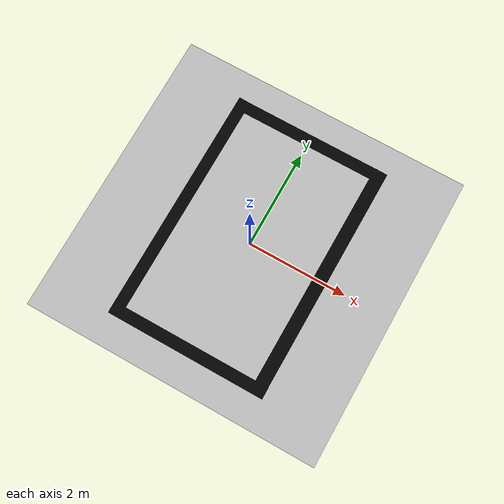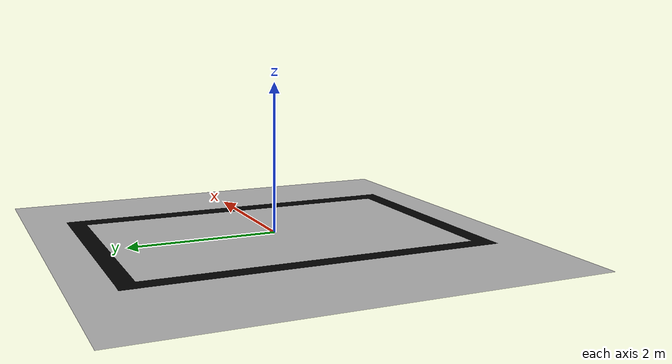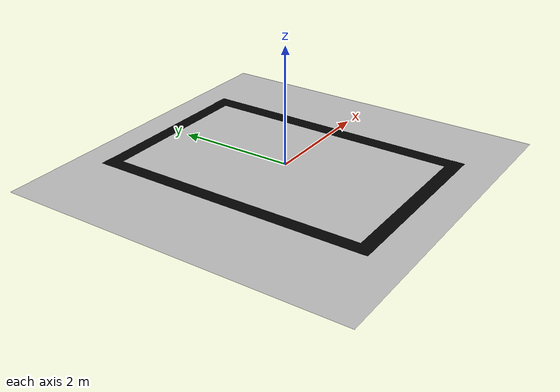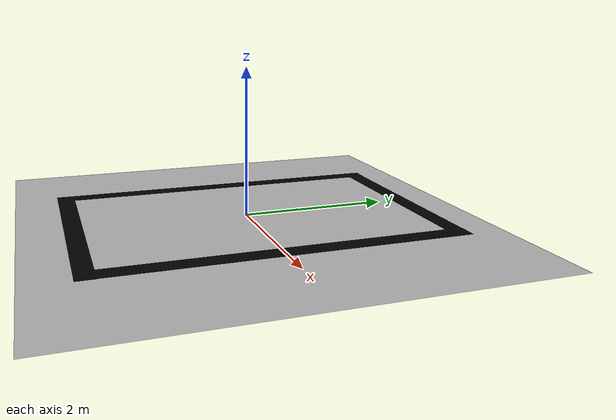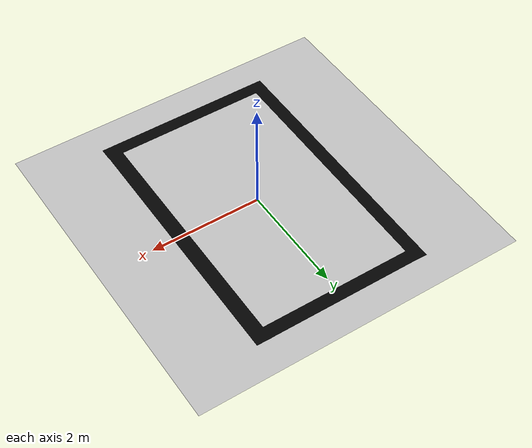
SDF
<?xml version="1.0" ?>
<sdf version="1.6">
  <model name="square">
    <pose>0 0 0 0 0 0</pose>
    <static>true</static>
    <link name="link">
      <collision name="collision1">
        <geometry>
          <mesh>
            <uri>model://square_path/meshes/square.dae</uri>
          </mesh>
        </geometry>
      </collision>

      <visual name="visual1">
        <cast_shadows>true</cast_shadows>
        <geometry>
          <mesh>
            <uri>model://square_path/meshes/square.dae</uri>
          </mesh>
        </geometry>
      </visual>

    </link>
  </model>
</sdf>
